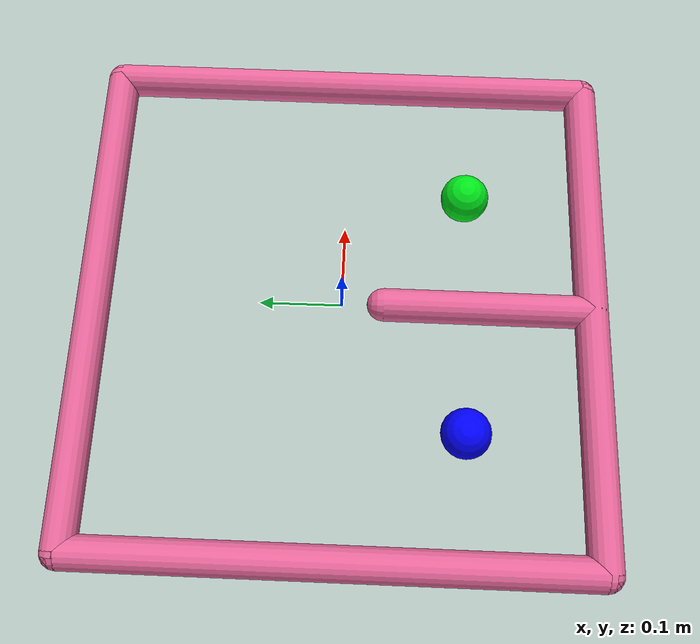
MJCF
<mujoco model="twod_point">
    <compiler inertiafromgeom="true" angle="radian" coordinate="local" />
    <option timestep="0.01" gravity="0 0 0" iterations="20" integrator="Euler" />
    <default>
        <joint limited="false" damping="1" />
        <geom contype="2" conaffinity="1" condim="1" friction=".5 .1 .1" density="1000" margin="0.002" />
    </default>

    <worldbody>
        <camera name="worldview" pos="0. 0. .85" zaxis="0.0 0.0 1.0" />
        <camera name="robot" pos="0. 0. .85" zaxis="0.0 0.0 1.0" />

        <!-- Pointmass -->
        <body name="particle" pos="-0.15 -0.15 0">
            <geom name="particle_geom" type="sphere" size="0.03" rgba="0.0 0.0 1.0 1" contype="1"/>
            <site name="particle_site" pos="0 0 0" size="0.01" />
            <joint name="ball_x" type="slide" pos="0 0 0" axis="1 0 0" />
            <joint name="ball_y" type="slide" pos="0 0 0" axis="0 1 0" />
        </body>

        <!-- Target -->
        <body name="target" pos="0.15 -0.15 0">
            <geom conaffinity="2" name="target_geom" type="sphere" size="0.03" rgba="0 0.9 0.1 1"/>
        </body>

        <!-- Arena -->
        <geom conaffinity="1" fromto="-.3 -.3 .01 .3 -.3 .01" name="sideS" rgba="0.9 0.4 0.6 1" size=".02" type="capsule"/>
		<geom conaffinity="1" fromto=" .3 -.3 .01 .3  .3 .01" name="sideE" rgba="0.9 0.4 0.6 1" size=".02" type="capsule"/>
		<geom conaffinity="1" fromto="-.3  .3 .01 .3  .3 .01" name="sideN" rgba="0.9 0.4 0.6 1" size=".02" type="capsule"/>
		<geom conaffinity="1" fromto="-.3 -.3 .01 -.3 .3 .01" name="sideW" rgba="0.9 0.4 0.6 1" size=".02" type="capsule"/>

        <geom conaffinity="1" fromto="0 -.3 .01 0 -.05 .01" name="wall" rgba="0.9 0.4 0.6 1" size=".02" type="capsule"/>
    </worldbody>

    <actuator>
        <motor joint="ball_x" ctrlrange="-5.0 5.0" ctrllimited="true"/>
        <motor joint="ball_y" ctrlrange="-5.0 5.0" ctrllimited="true"/>
    </actuator>
</mujoco>
